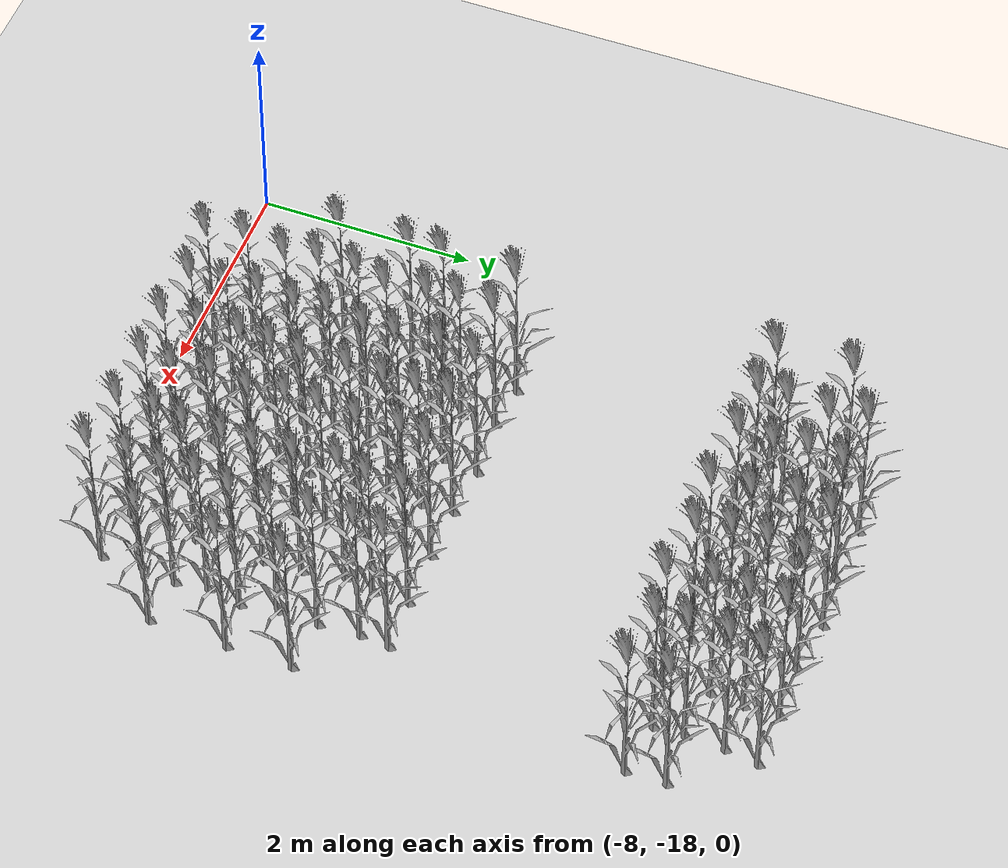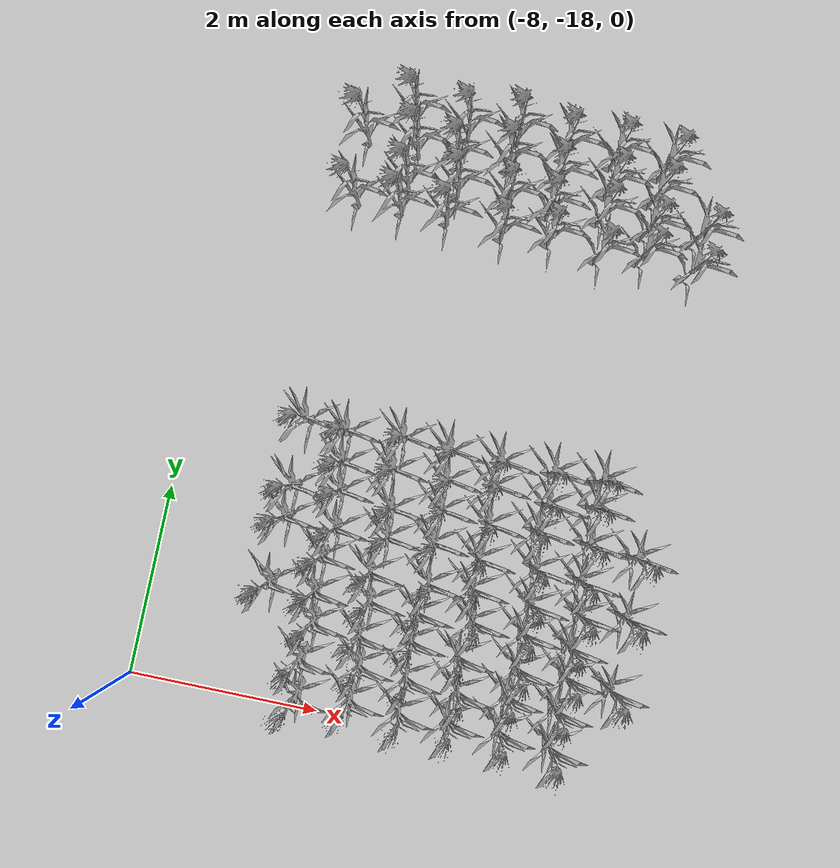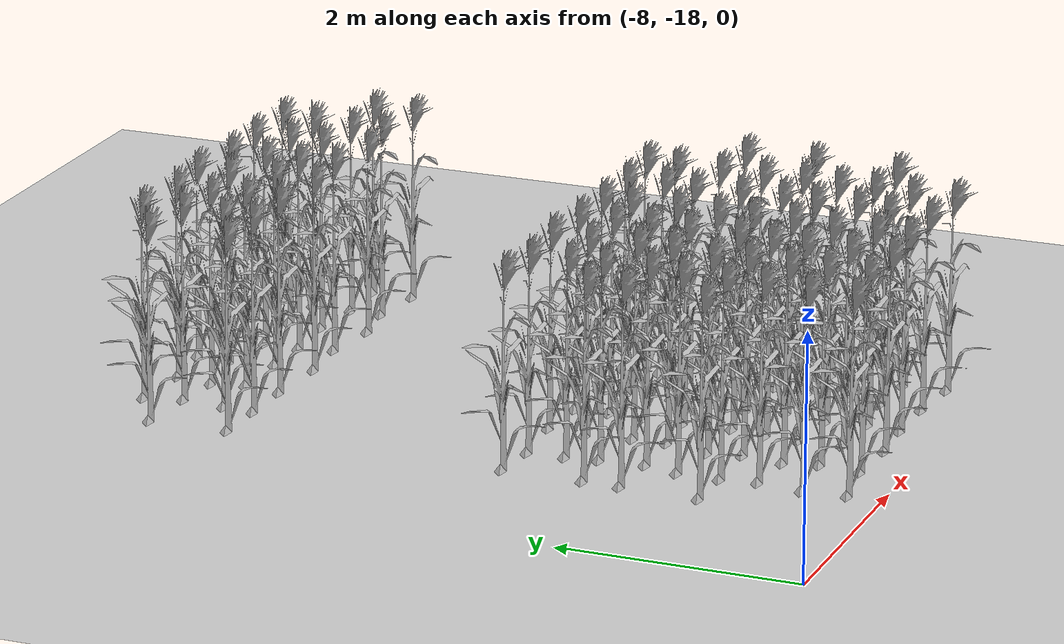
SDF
<sdf version="1.7">
 <world name="farmland_world">
  <model name="ground_plane">
   <static>1</static>
   <link name="link">
    <collision name="collision">
     <geometry><plane><normal>0 0 1</normal><size>40.0 40.0</size></plane></geometry>
     <surface><friction><ode><mu>100</mu><mu2>50</mu2></ode></friction></surface>
    </collision>
    <visual name="visual">
     <cast_shadows>0</cast_shadows>
     <geometry><plane><normal>0 0 1</normal><size>40.0 40.0</size></plane></geometry>
     <material>
      <script><uri>file://media/materials/scripts/gazebo.material</uri><name>Gazebo/Grey</name></script>
     </material>
    </visual>
   </link>
  </model>
  <model name="tree_3_1611">
   <static>1</static>
   <link name="link">
    <collision name="collision">
     <geometry><mesh><uri>model://Corn_low_poly/corn.obj</uri><scale>1 1 1</scale></mesh></geometry>
     <surface><friction><ode><mu>100</mu><mu2>50</mu2></ode></friction></surface>
    </collision>
    <visual name="visual">
     <geometry><mesh><uri>model://Corn_low_poly/corn.obj</uri><scale>1 1 1</scale></mesh></geometry>
    </visual>
   </link>
   <pose>-3.1397422386692835 -17.030736346468213 0 0 0 0</pose>
  </model>
  <model name="tree_3_1612">
   <static>1</static>
   <link name="link">
    <collision name="collision">
     <geometry><mesh><uri>model://Corn_low_poly/corn.obj</uri><scale>1 1 1</scale></mesh></geometry>
     <surface><friction><ode><mu>100</mu><mu2>50</mu2></ode></friction></surface>
    </collision>
    <visual name="visual">
     <geometry><mesh><uri>model://Corn_low_poly/corn.obj</uri><scale>1 1 1</scale></mesh></geometry>
    </visual>
   </link>
   <pose>-3.59288550042372 -16.99288399985926 0 0 0 0</pose>
  </model>
  <model name="tree_3_1613">
   <static>1</static>
   <link name="link">
    <collision name="collision">
     <geometry><mesh><uri>model://Corn_low_poly/corn.obj</uri><scale>1 1 1</scale></mesh></geometry>
     <surface><friction><ode><mu>100</mu><mu2>50</mu2></ode></friction></surface>
    </collision>
    <visual name="visual">
     <geometry><mesh><uri>model://Corn_low_poly/corn.obj</uri><scale>1 1 1</scale></mesh></geometry>
    </visual>
   </link>
   <pose>-4.085059337153093 -17.00917481386576 0 0 0 0</pose>
  </model>
  <model name="tree_3_1614">
   <static>1</static>
   <link name="link">
    <collision name="collision">
     <geometry><mesh><uri>model://Corn_low_poly/corn.obj</uri><scale>1 1 1</scale></mesh></geometry>
     <surface><friction><ode><mu>100</mu><mu2>50</mu2></ode></friction></surface>
    </collision>
    <visual name="visual">
     <geometry><mesh><uri>model://Corn_low_poly/corn.obj</uri><scale>1 1 1</scale></mesh></geometry>
    </visual>
   </link>
   <pose>-4.685846703686727 -17.00980598752761 0 0 0 0</pose>
  </model>
  <model name="tree_3_1615">
   <static>1</static>
   <link name="link">
    <collision name="collision">
     <geometry><mesh><uri>model://Corn_low_poly/corn.obj</uri><scale>1 1 1</scale></mesh></geometry>
     <surface><friction><ode><mu>100</mu><mu2>50</mu2></ode></friction></surface>
    </collision>
    <visual name="visual">
     <geometry><mesh><uri>model://Corn_low_poly/corn.obj</uri><scale>1 1 1</scale></mesh></geometry>
    </visual>
   </link>
   <pose>-5.172868781764245 -16.9514650148674 0 0 0 0</pose>
  </model>
  <model name="tree_3_1616">
   <static>1</static>
   <link name="link">
    <collision name="collision">
     <geometry><mesh><uri>model://Corn_low_poly/corn.obj</uri><scale>1 1 1</scale></mesh></geometry>
     <surface><friction><ode><mu>100</mu><mu2>50</mu2></ode></friction></surface>
    </collision>
    <visual name="visual">
     <geometry><mesh><uri>model://Corn_low_poly/corn.obj</uri><scale>1 1 1</scale></mesh></geometry>
    </visual>
   </link>
   <pose>-5.695799287543952 -17.002652059336327 0 0 0 0</pose>
  </model>
  <model name="tree_3_1617">
   <static>1</static>
   <link name="link">
    <collision name="collision">
     <geometry><mesh><uri>model://Corn_low_poly/corn.obj</uri><scale>1 1 1</scale></mesh></geometry>
     <surface><friction><ode><mu>100</mu><mu2>50</mu2></ode></friction></surface>
    </collision>
    <visual name="visual">
     <geometry><mesh><uri>model://Corn_low_poly/corn.obj</uri><scale>1 1 1</scale></mesh></geometry>
    </visual>
   </link>
   <pose>-6.1676841356636505 -16.96818800156991 0 0 0 0</pose>
  </model>
  <model name="tree_3_1646">
   <static>1</static>
   <link name="link">
    <collision name="collision">
     <geometry><mesh><uri>model://Corn_low_poly/corn.obj</uri><scale>1 1 1</scale></mesh></geometry>
     <surface><friction><ode><mu>100</mu><mu2>50</mu2></ode></friction></surface>
    </collision>
    <visual name="visual">
     <geometry><mesh><uri>model://Corn_low_poly/corn.obj</uri><scale>1 1 1</scale></mesh></geometry>
    </visual>
   </link>
   <pose>-3.641743785510311 -17.323104827554495 0 0 0 0</pose>
  </model>
  <model name="tree_3_1647">
   <static>1</static>
   <link name="link">
    <collision name="collision">
     <geometry><mesh><uri>model://Corn_low_poly/corn.obj</uri><scale>1 1 1</scale></mesh></geometry>
     <surface><friction><ode><mu>100</mu><mu2>50</mu2></ode></friction></surface>
    </collision>
    <visual name="visual">
     <geometry><mesh><uri>model://Corn_low_poly/corn.obj</uri><scale>1 1 1</scale></mesh></geometry>
    </visual>
   </link>
   <pose>-4.137597327462833 -17.28719341136074 0 0 0 0</pose>
  </model>
  <model name="tree_3_1648">
   <static>1</static>
   <link name="link">
    <collision name="collision">
     <geometry><mesh><uri>model://Corn_low_poly/corn.obj</uri><scale>1 1 1</scale></mesh></geometry>
     <surface><friction><ode><mu>100</mu><mu2>50</mu2></ode></friction></surface>
    </collision>
    <visual name="visual">
     <geometry><mesh><uri>model://Corn_low_poly/corn.obj</uri><scale>1 1 1</scale></mesh></geometry>
    </visual>
   </link>
   <pose>-4.619360274058074 -17.34922768461652 0 0 0 0</pose>
  </model>
  <model name="tree_3_1649">
   <static>1</static>
   <link name="link">
    <collision name="collision">
     <geometry><mesh><uri>model://Corn_low_poly/corn.obj</uri><scale>1 1 1</scale></mesh></geometry>
     <surface><friction><ode><mu>100</mu><mu2>50</mu2></ode></friction></surface>
    </collision>
    <visual name="visual">
     <geometry><mesh><uri>model://Corn_low_poly/corn.obj</uri><scale>1 1 1</scale></mesh></geometry>
    </visual>
   </link>
   <pose>-5.146396507543547 -17.3141138511327 0 0 0 0</pose>
  </model>
  <model name="tree_3_1650">
   <static>1</static>
   <link name="link">
    <collision name="collision">
     <geometry><mesh><uri>model://Corn_low_poly/corn.obj</uri><scale>1 1 1</scale></mesh></geometry>
     <surface><friction><ode><mu>100</mu><mu2>50</mu2></ode></friction></surface>
    </collision>
    <visual name="visual">
     <geometry><mesh><uri>model://Corn_low_poly/corn.obj</uri><scale>1 1 1</scale></mesh></geometry>
    </visual>
   </link>
   <pose>-5.626792496311977 -17.28869135371744 0 0 0 0</pose>
  </model>
  <model name="tree_3_1651">
   <static>1</static>
   <link name="link">
    <collision name="collision">
     <geometry><mesh><uri>model://Corn_low_poly/corn.obj</uri><scale>1 1 1</scale></mesh></geometry>
     <surface><friction><ode><mu>100</mu><mu2>50</mu2></ode></friction></surface>
    </collision>
    <visual name="visual">
     <geometry><mesh><uri>model://Corn_low_poly/corn.obj</uri><scale>1 1 1</scale></mesh></geometry>
    </visual>
   </link>
   <pose>-6.2167147938502625 -17.346010143679404 0 0 0 0</pose>
  </model>
  <model name="tree_3_1680">
   <static>1</static>
   <link name="link">
    <collision name="collision">
     <geometry><mesh><uri>model://Corn_low_poly/corn.obj</uri><scale>1 1 1</scale></mesh></geometry>
     <surface><friction><ode><mu>100</mu><mu2>50</mu2></ode></friction></surface>
    </collision>
    <visual name="visual">
     <geometry><mesh><uri>model://Corn_low_poly/corn.obj</uri><scale>1 1 1</scale></mesh></geometry>
    </visual>
   </link>
   <pose>-3.626656687373963 -17.690570200165535 0 0 0 0</pose>
  </model>
  <model name="tree_3_1681">
   <static>1</static>
   <link name="link">
    <collision name="collision">
     <geometry><mesh><uri>model://Corn_low_poly/corn.obj</uri><scale>1 1 1</scale></mesh></geometry>
     <surface><friction><ode><mu>100</mu><mu2>50</mu2></ode></friction></surface>
    </collision>
    <visual name="visual">
     <geometry><mesh><uri>model://Corn_low_poly/corn.obj</uri><scale>1 1 1</scale></mesh></geometry>
    </visual>
   </link>
   <pose>-4.142074260902395 -17.64216543627255 0 0 0 0</pose>
  </model>
  <model name="tree_3_1682">
   <static>1</static>
   <link name="link">
    <collision name="collision">
     <geometry><mesh><uri>model://Corn_low_poly/corn.obj</uri><scale>1 1 1</scale></mesh></geometry>
     <surface><friction><ode><mu>100</mu><mu2>50</mu2></ode></friction></surface>
    </collision>
    <visual name="visual">
     <geometry><mesh><uri>model://Corn_low_poly/corn.obj</uri><scale>1 1 1</scale></mesh></geometry>
    </visual>
   </link>
   <pose>-4.663910391695549 -17.634626997973267 0 0 0 0</pose>
  </model>
  <model name="tree_3_1683">
   <static>1</static>
   <link name="link">
    <collision name="collision">
     <geometry><mesh><uri>model://Corn_low_poly/corn.obj</uri><scale>1 1 1</scale></mesh></geometry>
     <surface><friction><ode><mu>100</mu><mu2>50</mu2></ode></friction></surface>
    </collision>
    <visual name="visual">
     <geometry><mesh><uri>model://Corn_low_poly/corn.obj</uri><scale>1 1 1</scale></mesh></geometry>
    </visual>
   </link>
   <pose>-5.146468566434922 -17.66493615223925 0 0 0 0</pose>
  </model>
  <model name="tree_3_1684">
   <static>1</static>
   <link name="link">
    <collision name="collision">
     <geometry><mesh><uri>model://Corn_low_poly/corn.obj</uri><scale>1 1 1</scale></mesh></geometry>
     <surface><friction><ode><mu>100</mu><mu2>50</mu2></ode></friction></surface>
    </collision>
    <visual name="visual">
     <geometry><mesh><uri>model://Corn_low_poly/corn.obj</uri><scale>1 1 1</scale></mesh></geometry>
    </visual>
   </link>
   <pose>-5.656145755442578 -17.634601215581778 0 0 0 0</pose>
  </model>
  <model name="tree_3_1685">
   <static>1</static>
   <link name="link">
    <collision name="collision">
     <geometry><mesh><uri>model://Corn_low_poly/corn.obj</uri><scale>1 1 1</scale></mesh></geometry>
     <surface><friction><ode><mu>100</mu><mu2>50</mu2></ode></friction></surface>
    </collision>
    <visual name="visual">
     <geometry><mesh><uri>model://Corn_low_poly/corn.obj</uri><scale>1 1 1</scale></mesh></geometry>
    </visual>
   </link>
   <pose>-6.181389979331996 -17.711629415954064 0 0 0 0</pose>
  </model>
  <model name="tree_3_1714">
   <static>1</static>
   <link name="link">
    <collision name="collision">
     <geometry><mesh><uri>model://Corn_low_poly/corn.obj</uri><scale>1 1 1</scale></mesh></geometry>
     <surface><friction><ode><mu>100</mu><mu2>50</mu2></ode></friction></surface>
    </collision>
    <visual name="visual">
     <geometry><mesh><uri>model://Corn_low_poly/corn.obj</uri><scale>1 1 1</scale></mesh></geometry>
    </visual>
   </link>
   <pose>-3.6272933151675146 -16.043872462049123 0 0 0 0</pose>
  </model>
  <model name="tree_3_1715">
   <static>1</static>
   <link name="link">
    <collision name="collision">
     <geometry><mesh><uri>model://Corn_low_poly/corn.obj</uri><scale>1 1 1</scale></mesh></geometry>
     <surface><friction><ode><mu>100</mu><mu2>50</mu2></ode></friction></surface>
    </collision>
    <visual name="visual">
     <geometry><mesh><uri>model://Corn_low_poly/corn.obj</uri><scale>1 1 1</scale></mesh></geometry>
    </visual>
   </link>
   <pose>-4.095188326739202 -16.015487851467963 0 0 0 0</pose>
  </model>
  <model name="tree_3_1716">
   <static>1</static>
   <link name="link">
    <collision name="collision">
     <geometry><mesh><uri>model://Corn_low_poly/corn.obj</uri><scale>1 1 1</scale></mesh></geometry>
     <surface><friction><ode><mu>100</mu><mu2>50</mu2></ode></friction></surface>
    </collision>
    <visual name="visual">
     <geometry><mesh><uri>model://Corn_low_poly/corn.obj</uri><scale>1 1 1</scale></mesh></geometry>
    </visual>
   </link>
   <pose>-4.673987175027885 -16.029645776999036 0 0 0 0</pose>
  </model>
  <model name="tree_3_1717">
   <static>1</static>
   <link name="link">
    <collision name="collision">
     <geometry><mesh><uri>model://Corn_low_poly/corn.obj</uri><scale>1 1 1</scale></mesh></geometry>
     <surface><friction><ode><mu>100</mu><mu2>50</mu2></ode></friction></surface>
    </collision>
    <visual name="visual">
     <geometry><mesh><uri>model://Corn_low_poly/corn.obj</uri><scale>1 1 1</scale></mesh></geometry>
    </visual>
   </link>
   <pose>-5.152997664500418 -15.960549197843598 0 0 0 0</pose>
  </model>
  <model name="tree_3_1718">
   <static>1</static>
   <link name="link">
    <collision name="collision">
     <geometry><mesh><uri>model://Corn_low_poly/corn.obj</uri><scale>1 1 1</scale></mesh></geometry>
     <surface><friction><ode><mu>100</mu><mu2>50</mu2></ode></friction></surface>
    </collision>
    <visual name="visual">
     <geometry><mesh><uri>model://Corn_low_poly/corn.obj</uri><scale>1 1 1</scale></mesh></geometry>
    </visual>
   </link>
   <pose>-5.619545102801128 -16.000574977163758 0 0 0 0</pose>
  </model>
  <model name="tree_3_1719">
   <static>1</static>
   <link name="link">
    <collision name="collision">
     <geometry><mesh><uri>model://Corn_low_poly/corn.obj</uri><scale>1 1 1</scale></mesh></geometry>
     <surface><friction><ode><mu>100</mu><mu2>50</mu2></ode></friction></surface>
    </collision>
    <visual name="visual">
     <geometry><mesh><uri>model://Corn_low_poly/corn.obj</uri><scale>1 1 1</scale></mesh></geometry>
    </visual>
   </link>
   <pose>-6.138362162706873 -16.014624042219957 0 0 0 0</pose>
  </model>
  <model name="tree_3_1720">
   <static>1</static>
   <link name="link">
    <collision name="collision">
     <geometry><mesh><uri>model://Corn_low_poly/corn.obj</uri><scale>1 1 1</scale></mesh></geometry>
     <surface><friction><ode><mu>100</mu><mu2>50</mu2></ode></friction></surface>
    </collision>
    <visual name="visual">
     <geometry><mesh><uri>model://Corn_low_poly/corn.obj</uri><scale>1 1 1</scale></mesh></geometry>
    </visual>
   </link>
   <pose>-6.655628417653279 -15.999897211862011 0 0 0 0</pose>
  </model>
  <model name="tree_3_1747">
   <static>1</static>
   <link name="link">
    <collision name="collision">
     <geometry><mesh><uri>model://Corn_low_poly/corn.obj</uri><scale>1 1 1</scale></mesh></geometry>
     <surface><friction><ode><mu>100</mu><mu2>50</mu2></ode></friction></surface>
    </collision>
    <visual name="visual">
     <geometry><mesh><uri>model://Corn_low_poly/corn.obj</uri><scale>1 1 1</scale></mesh></geometry>
    </visual>
   </link>
   <pose>-3.1203129160128147 -16.308423415425683 0 0 0 0</pose>
  </model>
  <model name="tree_3_1748">
   <static>1</static>
   <link name="link">
    <collision name="collision">
     <geometry><mesh><uri>model://Corn_low_poly/corn.obj</uri><scale>1 1 1</scale></mesh></geometry>
     <surface><friction><ode><mu>100</mu><mu2>50</mu2></ode></friction></surface>
    </collision>
    <visual name="visual">
     <geometry><mesh><uri>model://Corn_low_poly/corn.obj</uri><scale>1 1 1</scale></mesh></geometry>
    </visual>
   </link>
   <pose>-3.5713962718185894 -16.374798930211952 0 0 0 0</pose>
  </model>
  <model name="tree_3_1749">
   <static>1</static>
   <link name="link">
    <collision name="collision">
     <geometry><mesh><uri>model://Corn_low_poly/corn.obj</uri><scale>1 1 1</scale></mesh></geometry>
     <surface><friction><ode><mu>100</mu><mu2>50</mu2></ode></friction></surface>
    </collision>
    <visual name="visual">
     <geometry><mesh><uri>model://Corn_low_poly/corn.obj</uri><scale>1 1 1</scale></mesh></geometry>
    </visual>
   </link>
   <pose>-4.074432072884407 -16.368140793353923 0 0 0 0</pose>
  </model>
  <model name="tree_3_1750">
   <static>1</static>
   <link name="link">
    <collision name="collision">
     <geometry><mesh><uri>model://Corn_low_poly/corn.obj</uri><scale>1 1 1</scale></mesh></geometry>
     <surface><friction><ode><mu>100</mu><mu2>50</mu2></ode></friction></surface>
    </collision>
    <visual name="visual">
     <geometry><mesh><uri>model://Corn_low_poly/corn.obj</uri><scale>1 1 1</scale></mesh></geometry>
    </visual>
   </link>
   <pose>-4.677072923241501 -16.327762180886484 0 0 0 0</pose>
  </model>
  <model name="tree_3_1751">
   <static>1</static>
   <link name="link">
    <collision name="collision">
     <geometry><mesh><uri>model://Corn_low_poly/corn.obj</uri><scale>1 1 1</scale></mesh></geometry>
     <surface><friction><ode><mu>100</mu><mu2>50</mu2></ode></friction></surface>
    </collision>
    <visual name="visual">
     <geometry><mesh><uri>model://Corn_low_poly/corn.obj</uri><scale>1 1 1</scale></mesh></geometry>
    </visual>
   </link>
   <pose>-5.118922395369588 -16.371063998339526 0 0 0 0</pose>
  </model>
  <model name="tree_3_1752">
   <static>1</static>
   <link name="link">
    <collision name="collision">
     <geometry><mesh><uri>model://Corn_low_poly/corn.obj</uri><scale>1 1 1</scale></mesh></geometry>
     <surface><friction><ode><mu>100</mu><mu2>50</mu2></ode></friction></surface>
    </collision>
    <visual name="visual">
     <geometry><mesh><uri>model://Corn_low_poly/corn.obj</uri><scale>1 1 1</scale></mesh></geometry>
    </visual>
   </link>
   <pose>-5.711892411233068 -16.373869350701682 0 0 0 0</pose>
  </model>
  <model name="tree_3_1753">
   <static>1</static>
   <link name="link">
    <collision name="collision">
     <geometry><mesh><uri>model://Corn_low_poly/corn.obj</uri><scale>1 1 1</scale></mesh></geometry>
     <surface><friction><ode><mu>100</mu><mu2>50</mu2></ode></friction></surface>
    </collision>
    <visual name="visual">
     <geometry><mesh><uri>model://Corn_low_poly/corn.obj</uri><scale>1 1 1</scale></mesh></geometry>
    </visual>
   </link>
   <pose>-6.212683852213205 -16.30864493719404 0 0 0 0</pose>
  </model>
  <model name="tree_3_1782">
   <static>1</static>
   <link name="link">
    <collision name="collision">
     <geometry><mesh><uri>model://Corn_low_poly/corn.obj</uri><scale>1 1 1</scale></mesh></geometry>
     <surface><friction><ode><mu>100</mu><mu2>50</mu2></ode></friction></surface>
    </collision>
    <visual name="visual">
     <geometry><mesh><uri>model://Corn_low_poly/corn.obj</uri><scale>1 1 1</scale></mesh></geometry>
    </visual>
   </link>
   <pose>-3.6285955800052467 -16.694652311402134 0 0 0 0</pose>
  </model>
  <model name="tree_3_1783">
   <static>1</static>
   <link name="link">
    <collision name="collision">
     <geometry><mesh><uri>model://Corn_low_poly/corn.obj</uri><scale>1 1 1</scale></mesh></geometry>
     <surface><friction><ode><mu>100</mu><mu2>50</mu2></ode></friction></surface>
    </collision>
    <visual name="visual">
     <geometry><mesh><uri>model://Corn_low_poly/corn.obj</uri><scale>1 1 1</scale></mesh></geometry>
    </visual>
   </link>
   <pose>-4.093695785388335 -16.655809845333117 0 0 0 0</pose>
  </model>
  <model name="tree_3_1784">
   <static>1</static>
   <link name="link">
    <collision name="collision">
     <geometry><mesh><uri>model://Corn_low_poly/corn.obj</uri><scale>1 1 1</scale></mesh></geometry>
     <surface><friction><ode><mu>100</mu><mu2>50</mu2></ode></friction></surface>
    </collision>
    <visual name="visual">
     <geometry><mesh><uri>model://Corn_low_poly/corn.obj</uri><scale>1 1 1</scale></mesh></geometry>
    </visual>
   </link>
   <pose>-4.6113411313050445 -16.648671154962706 0 0 0 0</pose>
  </model>
  <model name="tree_3_1785">
   <static>1</static>
   <link name="link">
    <collision name="collision">
     <geometry><mesh><uri>model://Corn_low_poly/corn.obj</uri><scale>1 1 1</scale></mesh></geometry>
     <surface><friction><ode><mu>100</mu><mu2>50</mu2></ode></friction></surface>
    </collision>
    <visual name="visual">
     <geometry><mesh><uri>model://Corn_low_poly/corn.obj</uri><scale>1 1 1</scale></mesh></geometry>
    </visual>
   </link>
   <pose>-5.164128123638202 -16.669041853189956 0 0 0 0</pose>
  </model>
  <model name="tree_3_1786">
   <static>1</static>
   <link name="link">
    <collision name="collision">
     <geometry><mesh><uri>model://Corn_low_poly/corn.obj</uri><scale>1 1 1</scale></mesh></geometry>
     <surface><friction><ode><mu>100</mu><mu2>50</mu2></ode></friction></surface>
    </collision>
    <visual name="visual">
     <geometry><mesh><uri>model://Corn_low_poly/corn.obj</uri><scale>1 1 1</scale></mesh></geometry>
    </visual>
   </link>
   <pose>-5.650744012435363 -16.652536508827833 0 0 0 0</pose>
  </model>
  <model name="tree_3_1787">
   <static>1</static>
   <link name="link">
    <collision name="collision">
     <geometry><mesh><uri>model://Corn_low_poly/corn.obj</uri><scale>1 1 1</scale></mesh></geometry>
     <surface><friction><ode><mu>100</mu><mu2>50</mu2></ode></friction></surface>
    </collision>
    <visual name="visual">
     <geometry><mesh><uri>model://Corn_low_poly/corn.obj</uri><scale>1 1 1</scale></mesh></geometry>
    </visual>
   </link>
   <pose>-6.214442000567977 -16.66604081338597 0 0 0 0</pose>
  </model>
  <model name="tree_3_1788">
   <static>1</static>
   <link name="link">
    <collision name="collision">
     <geometry><mesh><uri>model://Corn_low_poly/corn.obj</uri><scale>1 1 1</scale></mesh></geometry>
     <surface><friction><ode><mu>100</mu><mu2>50</mu2></ode></friction></surface>
    </collision>
    <visual name="visual">
     <geometry><mesh><uri>model://Corn_low_poly/corn.obj</uri><scale>1 1 1</scale></mesh></geometry>
    </visual>
   </link>
   <pose>-6.670846621222684 -16.660760306926033 0 0 0 0</pose>
  </model>
  <model name="tree_3_1816">
   <static>1</static>
   <link name="link">
    <collision name="collision">
     <geometry><mesh><uri>model://Corn_low_poly/corn.obj</uri><scale>1 1 1</scale></mesh></geometry>
     <surface><friction><ode><mu>100</mu><mu2>50</mu2></ode></friction></surface>
    </collision>
    <visual name="visual">
     <geometry><mesh><uri>model://Corn_low_poly/corn.obj</uri><scale>1 1 1</scale></mesh></geometry>
    </visual>
   </link>
   <pose>-3.6087052337561496 -15.018952401241194 0 0 0 0</pose>
  </model>
  <model name="tree_3_1817">
   <static>1</static>
   <link name="link">
    <collision name="collision">
     <geometry><mesh><uri>model://Corn_low_poly/corn.obj</uri><scale>1 1 1</scale></mesh></geometry>
     <surface><friction><ode><mu>100</mu><mu2>50</mu2></ode></friction></surface>
    </collision>
    <visual name="visual">
     <geometry><mesh><uri>model://Corn_low_poly/corn.obj</uri><scale>1 1 1</scale></mesh></geometry>
    </visual>
   </link>
   <pose>-4.1070528802377275 -15.037573755842324 0 0 0 0</pose>
  </model>
  <model name="tree_3_1818">
   <static>1</static>
   <link name="link">
    <collision name="collision">
     <geometry><mesh><uri>model://Corn_low_poly/corn.obj</uri><scale>1 1 1</scale></mesh></geometry>
     <surface><friction><ode><mu>100</mu><mu2>50</mu2></ode></friction></surface>
    </collision>
    <visual name="visual">
     <geometry><mesh><uri>model://Corn_low_poly/corn.obj</uri><scale>1 1 1</scale></mesh></geometry>
    </visual>
   </link>
   <pose>-4.652064844733302 -15.042725363409541 0 0 0 0</pose>
  </model>
  <model name="tree_3_1819">
   <static>1</static>
   <link name="link">
    <collision name="collision">
     <geometry><mesh><uri>model://Corn_low_poly/corn.obj</uri><scale>1 1 1</scale></mesh></geometry>
     <surface><friction><ode><mu>100</mu><mu2>50</mu2></ode></friction></surface>
    </collision>
    <visual name="visual">
     <geometry><mesh><uri>model://Corn_low_poly/corn.obj</uri><scale>1 1 1</scale></mesh></geometry>
    </visual>
   </link>
   <pose>-5.169477396566632 -15.036894237131703 0 0 0 0</pose>
  </model>
  <model name="tree_3_1820">
   <static>1</static>
   <link name="link">
    <collision name="collision">
     <geometry><mesh><uri>model://Corn_low_poly/corn.obj</uri><scale>1 1 1</scale></mesh></geometry>
     <surface><friction><ode><mu>100</mu><mu2>50</mu2></ode></friction></surface>
    </collision>
    <visual name="visual">
     <geometry><mesh><uri>model://Corn_low_poly/corn.obj</uri><scale>1 1 1</scale></mesh></geometry>
    </visual>
   </link>
   <pose>-5.656482641810184 -15.000963063416302 0 0 0 0</pose>
  </model>
  <model name="tree_3_1821">
   <static>1</static>
   <link name="link">
    <collision name="collision">
     <geometry><mesh><uri>model://Corn_low_poly/corn.obj</uri><scale>1 1 1</scale></mesh></geometry>
     <surface><friction><ode><mu>100</mu><mu2>50</mu2></ode></friction></surface>
    </collision>
    <visual name="visual">
     <geometry><mesh><uri>model://Corn_low_poly/corn.obj</uri><scale>1 1 1</scale></mesh></geometry>
    </visual>
   </link>
   <pose>-6.2277019827246765 -15.04900702120922 0 0 0 0</pose>
  </model>
  <model name="tree_3_1822">
   <static>1</static>
   <link name="link">
    <collision name="collision">
     <geometry><mesh><uri>model://Corn_low_poly/corn.obj</uri><scale>1 1 1</scale></mesh></geometry>
     <surface><friction><ode><mu>100</mu><mu2>50</mu2></ode></friction></surface>
    </collision>
    <visual name="visual">
     <geometry><mesh><uri>model://Corn_low_poly/corn.obj</uri><scale>1 1 1</scale></mesh></geometry>
    </visual>
   </link>
   <pose>-6.656590079451965 -15.008446522166166 0 0 0 0</pose>
  </model>
  <model name="tree_3_1850">
   <static>1</static>
   <link name="link">
    <collision name="collision">
     <geometry><mesh><uri>model://Corn_low_poly/corn.obj</uri><scale>1 1 1</scale></mesh></geometry>
     <surface><friction><ode><mu>100</mu><mu2>50</mu2></ode></friction></surface>
    </collision>
    <visual name="visual">
     <geometry><mesh><uri>model://Corn_low_poly/corn.obj</uri><scale>1 1 1</scale></mesh></geometry>
    </visual>
   </link>
   <pose>-3.637031244460719 -15.292049521724367 0 0 0 0</pose>
  </model>
  <model name="tree_3_1851">
   <static>1</static>
   <link name="link">
    <collision name="collision">
     <geometry><mesh><uri>model://Corn_low_poly/corn.obj</uri><scale>1 1 1</scale></mesh></geometry>
     <surface><friction><ode><mu>100</mu><mu2>50</mu2></ode></friction></surface>
    </collision>
    <visual name="visual">
     <geometry><mesh><uri>model://Corn_low_poly/corn.obj</uri><scale>1 1 1</scale></mesh></geometry>
    </visual>
   </link>
   <pose>-4.099145460281433 -15.360584260227466 0 0 0 0</pose>
  </model>
  <model name="tree_3_1852">
   <static>1</static>
   <link name="link">
    <collision name="collision">
     <geometry><mesh><uri>model://Corn_low_poly/corn.obj</uri><scale>1 1 1</scale></mesh></geometry>
     <surface><friction><ode><mu>100</mu><mu2>50</mu2></ode></friction></surface>
    </collision>
    <visual name="visual">
     <geometry><mesh><uri>model://Corn_low_poly/corn.obj</uri><scale>1 1 1</scale></mesh></geometry>
    </visual>
   </link>
   <pose>-4.678417184318175 -15.290083468781518 0 0 0 0</pose>
  </model>
  <model name="tree_3_1853">
   <static>1</static>
   <link name="link">
    <collision name="collision">
     <geometry><mesh><uri>model://Corn_low_poly/corn.obj</uri><scale>1 1 1</scale></mesh></geometry>
     <surface><friction><ode><mu>100</mu><mu2>50</mu2></ode></friction></surface>
    </collision>
    <visual name="visual">
     <geometry><mesh><uri>model://Corn_low_poly/corn.obj</uri><scale>1 1 1</scale></mesh></geometry>
    </visual>
   </link>
   <pose>-5.147739302151314 -15.328612174984466 0 0 0 0</pose>
  </model>
  <model name="tree_3_1854">
   <static>1</static>
   <link name="link">
    <collision name="collision">
     <geometry><mesh><uri>model://Corn_low_poly/corn.obj</uri><scale>1 1 1</scale></mesh></geometry>
     <surface><friction><ode><mu>100</mu><mu2>50</mu2></ode></friction></surface>
    </collision>
    <visual name="visual">
     <geometry><mesh><uri>model://Corn_low_poly/corn.obj</uri><scale>1 1 1</scale></mesh></geometry>
    </visual>
   </link>
   <pose>-5.693778415225128 -15.333033796901807 0 0 0 0</pose>
  </model>
  <model name="tree_3_1855">
   <static>1</static>
   <link name="link">
    <collision name="collision">
     <geometry><mesh><uri>model://Corn_low_poly/corn.obj</uri><scale>1 1 1</scale></mesh></geometry>
     <surface><friction><ode><mu>100</mu><mu2>50</mu2></ode></friction></surface>
    </collision>
    <visual name="visual">
     <geometry><mesh><uri>model://Corn_low_poly/corn.obj</uri><scale>1 1 1</scale></mesh></geometry>
    </visual>
   </link>
   <pose>-6.210894848014414 -15.363761315973157 0 0 0 0</pose>
  </model>
  <model name="tree_3_1883">
   <static>1</static>
   <link name="link">
    <collision name="collision">
     <geometry><mesh><uri>model://Corn_low_poly/corn.obj</uri><scale>1 1 1</scale></mesh></geometry>
     <surface><friction><ode><mu>100</mu><mu2>50</mu2></ode></friction></surface>
    </collision>
    <visual name="visual">
     <geometry><mesh><uri>model://Corn_low_poly/corn.obj</uri><scale>1 1 1</scale></mesh></geometry>
    </visual>
   </link>
   <pose>-3.1164311988661764 -15.7063242092912 0 0 0 0</pose>
  </model>
  <model name="tree_3_1884">
   <static>1</static>
   <link name="link">
    <collision name="collision">
     <geometry><mesh><uri>model://Corn_low_poly/corn.obj</uri><scale>1 1 1</scale></mesh></geometry>
     <surface><friction><ode><mu>100</mu><mu2>50</mu2></ode></friction></surface>
    </collision>
    <visual name="visual">
     <geometry><mesh><uri>model://Corn_low_poly/corn.obj</uri><scale>1 1 1</scale></mesh></geometry>
    </visual>
   </link>
   <pose>-3.6142428867586642 -15.67010595509621 0 0 0 0</pose>
  </model>
  <model name="tree_3_1885">
   <static>1</static>
   <link name="link">
    <collision name="collision">
     <geometry><mesh><uri>model://Corn_low_poly/corn.obj</uri><scale>1 1 1</scale></mesh></geometry>
     <surface><friction><ode><mu>100</mu><mu2>50</mu2></ode></friction></surface>
    </collision>
    <visual name="visual">
     <geometry><mesh><uri>model://Corn_low_poly/corn.obj</uri><scale>1 1 1</scale></mesh></geometry>
    </visual>
   </link>
   <pose>-4.161719651812339 -15.641017574723724 0 0 0 0</pose>
  </model>
  <model name="tree_3_1886">
   <static>1</static>
   <link name="link">
    <collision name="collision">
     <geometry><mesh><uri>model://Corn_low_poly/corn.obj</uri><scale>1 1 1</scale></mesh></geometry>
     <surface><friction><ode><mu>100</mu><mu2>50</mu2></ode></friction></surface>
    </collision>
    <visual name="visual">
     <geometry><mesh><uri>model://Corn_low_poly/corn.obj</uri><scale>1 1 1</scale></mesh></geometry>
    </visual>
   </link>
   <pose>-4.645690342197953 -15.672808980800898 0 0 0 0</pose>
  </model>
  <model name="tree_3_1887">
   <static>1</static>
   <link name="link">
    <collision name="collision">
     <geometry><mesh><uri>model://Corn_low_poly/corn.obj</uri><scale>1 1 1</scale></mesh></geometry>
     <surface><friction><ode><mu>100</mu><mu2>50</mu2></ode></friction></surface>
    </collision>
    <visual name="visual">
     <geometry><mesh><uri>model://Corn_low_poly/corn.obj</uri><scale>1 1 1</scale></mesh></geometry>
    </visual>
   </link>
   <pose>-5.1403603814161425 -15.627023915255775 0 0 0 0</pose>
  </model>
  <model name="tree_3_1888">
   <static>1</static>
   <link name="link">
    <collision name="collision">
     <geometry><mesh><uri>model://Corn_low_poly/corn.obj</uri><scale>1 1 1</scale></mesh></geometry>
     <surface><friction><ode><mu>100</mu><mu2>50</mu2></ode></friction></surface>
    </collision>
    <visual name="visual">
     <geometry><mesh><uri>model://Corn_low_poly/corn.obj</uri><scale>1 1 1</scale></mesh></geometry>
    </visual>
   </link>
   <pose>-5.6289463439164145 -15.713587522113407 0 0 0 0</pose>
  </model>
  <model name="tree_3_1889">
   <static>1</static>
   <link name="link">
    <collision name="collision">
     <geometry><mesh><uri>model://Corn_low_poly/corn.obj</uri><scale>1 1 1</scale></mesh></geometry>
     <surface><friction><ode><mu>100</mu><mu2>50</mu2></ode></friction></surface>
    </collision>
    <visual name="visual">
     <geometry><mesh><uri>model://Corn_low_poly/corn.obj</uri><scale>1 1 1</scale></mesh></geometry>
    </visual>
   </link>
   <pose>-6.174150746282484 -15.639558735672251 0 0 0 0</pose>
  </model>
  <model name="tree_3_1890">
   <static>1</static>
   <link name="link">
    <collision name="collision">
     <geometry><mesh><uri>model://Corn_low_poly/corn.obj</uri><scale>1 1 1</scale></mesh></geometry>
     <surface><friction><ode><mu>100</mu><mu2>50</mu2></ode></friction></surface>
    </collision>
    <visual name="visual">
     <geometry><mesh><uri>model://Corn_low_poly/corn.obj</uri><scale>1 1 1</scale></mesh></geometry>
    </visual>
   </link>
   <pose>-6.6510035620500245 -15.68608179437432 0 0 0 0</pose>
  </model>
  <model name="tree_3_1918">
   <static>1</static>
   <link name="link">
    <collision name="collision">
     <geometry><mesh><uri>model://Corn_low_poly/corn.obj</uri><scale>1 1 1</scale></mesh></geometry>
     <surface><friction><ode><mu>100</mu><mu2>50</mu2></ode></friction></surface>
    </collision>
    <visual name="visual">
     <geometry><mesh><uri>model://Corn_low_poly/corn.obj</uri><scale>1 1 1</scale></mesh></geometry>
    </visual>
   </link>
   <pose>-3.6220179079487558 -12.012877699541018 0 0 0 0</pose>
  </model>
  <model name="tree_3_1919">
   <static>1</static>
   <link name="link">
    <collision name="collision">
     <geometry><mesh><uri>model://Corn_low_poly/corn.obj</uri><scale>1 1 1</scale></mesh></geometry>
     <surface><friction><ode><mu>100</mu><mu2>50</mu2></ode></friction></surface>
    </collision>
    <visual name="visual">
     <geometry><mesh><uri>model://Corn_low_poly/corn.obj</uri><scale>1 1 1</scale></mesh></geometry>
    </visual>
   </link>
   <pose>-4.09912926348179 -12.009592699764292 0 0 0 0</pose>
  </model>
  <model name="tree_3_1920">
   <static>1</static>
   <link name="link">
    <collision name="collision">
     <geometry><mesh><uri>model://Corn_low_poly/corn.obj</uri><scale>1 1 1</scale></mesh></geometry>
     <surface><friction><ode><mu>100</mu><mu2>50</mu2></ode></friction></surface>
    </collision>
    <visual name="visual">
     <geometry><mesh><uri>model://Corn_low_poly/corn.obj</uri><scale>1 1 1</scale></mesh></geometry>
    </visual>
   </link>
   <pose>-4.656579023272096 -12.037761275937193 0 0 0 0</pose>
  </model>
  <model name="tree_3_1921">
   <static>1</static>
   <link name="link">
    <collision name="collision">
     <geometry><mesh><uri>model://Corn_low_poly/corn.obj</uri><scale>1 1 1</scale></mesh></geometry>
     <surface><friction><ode><mu>100</mu><mu2>50</mu2></ode></friction></surface>
    </collision>
    <visual name="visual">
     <geometry><mesh><uri>model://Corn_low_poly/corn.obj</uri><scale>1 1 1</scale></mesh></geometry>
    </visual>
   </link>
   <pose>-5.185375775147511 -11.955683236367493 0 0 0 0</pose>
  </model>
  <model name="tree_3_1922">
   <static>1</static>
   <link name="link">
    <collision name="collision">
     <geometry><mesh><uri>model://Corn_low_poly/corn.obj</uri><scale>1 1 1</scale></mesh></geometry>
     <surface><friction><ode><mu>100</mu><mu2>50</mu2></ode></friction></surface>
    </collision>
    <visual name="visual">
     <geometry><mesh><uri>model://Corn_low_poly/corn.obj</uri><scale>1 1 1</scale></mesh></geometry>
    </visual>
   </link>
   <pose>-5.713971150908785 -12.04002509172524 0 0 0 0</pose>
  </model>
  <model name="tree_3_1923">
   <static>1</static>
   <link name="link">
    <collision name="collision">
     <geometry><mesh><uri>model://Corn_low_poly/corn.obj</uri><scale>1 1 1</scale></mesh></geometry>
     <surface><friction><ode><mu>100</mu><mu2>50</mu2></ode></friction></surface>
    </collision>
    <visual name="visual">
     <geometry><mesh><uri>model://Corn_low_poly/corn.obj</uri><scale>1 1 1</scale></mesh></geometry>
    </visual>
   </link>
   <pose>-6.1467012673530785 -11.998198800848206 0 0 0 0</pose>
  </model>
  <model name="tree_3_1924">
   <static>1</static>
   <link name="link">
    <collision name="collision">
     <geometry><mesh><uri>model://Corn_low_poly/corn.obj</uri><scale>1 1 1</scale></mesh></geometry>
     <surface><friction><ode><mu>100</mu><mu2>50</mu2></ode></friction></surface>
    </collision>
    <visual name="visual">
     <geometry><mesh><uri>model://Corn_low_poly/corn.obj</uri><scale>1 1 1</scale></mesh></geometry>
    </visual>
   </link>
   <pose>-6.688798447440646 -11.954885409411895 0 0 0 0</pose>
  </model>
  <model name="tree_3_1951">
   <static>1</static>
   <link name="link">
    <collision name="collision">
     <geometry><mesh><uri>model://Corn_low_poly/corn.obj</uri><scale>1 1 1</scale></mesh></geometry>
     <surface><friction><ode><mu>100</mu><mu2>50</mu2></ode></friction></surface>
    </collision>
    <visual name="visual">
     <geometry><mesh><uri>model://Corn_low_poly/corn.obj</uri><scale>1 1 1</scale></mesh></geometry>
    </visual>
   </link>
   <pose>-3.117968405881006 -12.349619629015853 0 0 0 0</pose>
  </model>
  <model name="tree_3_1952">
   <static>1</static>
   <link name="link">
    <collision name="collision">
     <geometry><mesh><uri>model://Corn_low_poly/corn.obj</uri><scale>1 1 1</scale></mesh></geometry>
     <surface><friction><ode><mu>100</mu><mu2>50</mu2></ode></friction></surface>
    </collision>
    <visual name="visual">
     <geometry><mesh><uri>model://Corn_low_poly/corn.obj</uri><scale>1 1 1</scale></mesh></geometry>
    </visual>
   </link>
   <pose>-3.6292468715099457 -12.367594716578228 0 0 0 0</pose>
  </model>
  <model name="tree_3_1953">
   <static>1</static>
   <link name="link">
    <collision name="collision">
     <geometry><mesh><uri>model://Corn_low_poly/corn.obj</uri><scale>1 1 1</scale></mesh></geometry>
     <surface><friction><ode><mu>100</mu><mu2>50</mu2></ode></friction></surface>
    </collision>
    <visual name="visual">
     <geometry><mesh><uri>model://Corn_low_poly/corn.obj</uri><scale>1 1 1</scale></mesh></geometry>
    </visual>
   </link>
   <pose>-4.124778044076734 -12.314387443246527 0 0 0 0</pose>
  </model>
  <model name="tree_3_1954">
   <static>1</static>
   <link name="link">
    <collision name="collision">
     <geometry><mesh><uri>model://Corn_low_poly/corn.obj</uri><scale>1 1 1</scale></mesh></geometry>
     <surface><friction><ode><mu>100</mu><mu2>50</mu2></ode></friction></surface>
    </collision>
    <visual name="visual">
     <geometry><mesh><uri>model://Corn_low_poly/corn.obj</uri><scale>1 1 1</scale></mesh></geometry>
    </visual>
   </link>
   <pose>-4.66887568235203 -12.3533400267276 0 0 0 0</pose>
  </model>
  <model name="tree_3_1955">
   <static>1</static>
   <link name="link">
    <collision name="collision">
     <geometry><mesh><uri>model://Corn_low_poly/corn.obj</uri><scale>1 1 1</scale></mesh></geometry>
     <surface><friction><ode><mu>100</mu><mu2>50</mu2></ode></friction></surface>
    </collision>
    <visual name="visual">
     <geometry><mesh><uri>model://Corn_low_poly/corn.obj</uri><scale>1 1 1</scale></mesh></geometry>
    </visual>
   </link>
   <pose>-5.104641104572975 -12.334935330937162 0 0 0 0</pose>
  </model>
  <model name="tree_3_1956">
   <static>1</static>
   <link name="link">
    <collision name="collision">
     <geometry><mesh><uri>model://Corn_low_poly/corn.obj</uri><scale>1 1 1</scale></mesh></geometry>
     <surface><friction><ode><mu>100</mu><mu2>50</mu2></ode></friction></surface>
    </collision>
    <visual name="visual">
     <geometry><mesh><uri>model://Corn_low_poly/corn.obj</uri><scale>1 1 1</scale></mesh></geometry>
    </visual>
   </link>
   <pose>-5.646686976590086 -12.32271694053508 0 0 0 0</pose>
  </model>
  <model name="tree_3_1957">
   <static>1</static>
   <link name="link">
    <collision name="collision">
     <geometry><mesh><uri>model://Corn_low_poly/corn.obj</uri><scale>1 1 1</scale></mesh></geometry>
     <surface><friction><ode><mu>100</mu><mu2>50</mu2></ode></friction></surface>
    </collision>
    <visual name="visual">
     <geometry><mesh><uri>model://Corn_low_poly/corn.obj</uri><scale>1 1 1</scale></mesh></geometry>
    </visual>
   </link>
   <pose>-6.1758142692042695 -12.373063511575396 0 0 0 0</pose>
  </model>
  <model name="tree_3_1985">
   <static>1</static>
   <link name="link">
    <collision name="collision">
     <geometry><mesh><uri>model://Corn_low_poly/corn.obj</uri><scale>1 1 1</scale></mesh></geometry>
     <surface><friction><ode><mu>100</mu><mu2>50</mu2></ode></friction></surface>
    </collision>
    <visual name="visual">
     <geometry><mesh><uri>model://Corn_low_poly/corn.obj</uri><scale>1 1 1</scale></mesh></geometry>
    </visual>
   </link>
   <pose>-3.1137375940106704 -12.715971961582797 0 0 0 0</pose>
  </model>
  <model name="tree_3_1986">
   <static>1</static>
   <link name="link">
    <collision name="collision">
     <geometry><mesh><uri>model://Corn_low_poly/corn.obj</uri><scale>1 1 1</scale></mesh></geometry>
     <surface><friction><ode><mu>100</mu><mu2>50</mu2></ode></friction></surface>
    </collision>
    <visual name="visual">
     <geometry><mesh><uri>model://Corn_low_poly/corn.obj</uri><scale>1 1 1</scale></mesh></geometry>
    </visual>
   </link>
   <pose>-3.6262266454298713 -12.648472583461496 0 0 0 0</pose>
  </model>
  <model name="tree_3_1987">
   <static>1</static>
   <link name="link">
    <collision name="collision">
     <geometry><mesh><uri>model://Corn_low_poly/corn.obj</uri><scale>1 1 1</scale></mesh></geometry>
     <surface><friction><ode><mu>100</mu><mu2>50</mu2></ode></friction></surface>
    </collision>
    <visual name="visual">
     <geometry><mesh><uri>model://Corn_low_poly/corn.obj</uri><scale>1 1 1</scale></mesh></geometry>
    </visual>
   </link>
   <pose>-4.072849360635561 -12.718335728683858 0 0 0 0</pose>
  </model>
  <model name="tree_3_1988">
   <static>1</static>
   <link name="link">
    <collision name="collision">
     <geometry><mesh><uri>model://Corn_low_poly/corn.obj</uri><scale>1 1 1</scale></mesh></geometry>
     <surface><friction><ode><mu>100</mu><mu2>50</mu2></ode></friction></surface>
    </collision>
    <visual name="visual">
     <geometry><mesh><uri>model://Corn_low_poly/corn.obj</uri><scale>1 1 1</scale></mesh></geometry>
    </visual>
   </link>
   <pose>-4.600059440887695 -12.643461342288656 0 0 0 0</pose>
  </model>
  <model name="tree_3_1989">
   <static>1</static>
   <link name="link">
    <collision name="collision">
     <geometry><mesh><uri>model://Corn_low_poly/corn.obj</uri><scale>1 1 1</scale></mesh></geometry>
     <surface><friction><ode><mu>100</mu><mu2>50</mu2></ode></friction></surface>
    </collision>
    <visual name="visual">
     <geometry><mesh><uri>model://Corn_low_poly/corn.obj</uri><scale>1 1 1</scale></mesh></geometry>
    </visual>
   </link>
   <pose>-5.101795155290899 -12.68847177560011 0 0 0 0</pose>
  </model>
  <model name="tree_3_1990">
   <static>1</static>
   <link name="link">
    <collision name="collision">
     <geometry><mesh><uri>model://Corn_low_poly/corn.obj</uri><scale>1 1 1</scale></mesh></geometry>
     <surface><friction><ode><mu>100</mu><mu2>50</mu2></ode></friction></surface>
    </collision>
    <visual name="visual">
     <geometry><mesh><uri>model://Corn_low_poly/corn.obj</uri><scale>1 1 1</scale></mesh></geometry>
    </visual>
   </link>
   <pose>-5.701399298080159 -12.648561219371825 0 0 0 0</pose>
  </model>
  <model name="tree_3_1991">
   <static>1</static>
   <link name="link">
    <collision name="collision">
     <geometry><mesh><uri>model://Corn_low_poly/corn.obj</uri><scale>1 1 1</scale></mesh></geometry>
     <surface><friction><ode><mu>100</mu><mu2>50</mu2></ode></friction></surface>
    </collision>
    <visual name="visual">
     <geometry><mesh><uri>model://Corn_low_poly/corn.obj</uri><scale>1 1 1</scale></mesh></geometry>
    </visual>
   </link>
   <pose>-6.195436861706811 -12.643023111525926 0 0 0 0</pose>
  </model>
  <model name="tree_3_1992">
   <static>1</static>
   <link name="link">
    <collision name="collision">
     <geometry><mesh><uri>model://Corn_low_poly/corn.obj</uri><scale>1 1 1</scale></mesh></geometry>
     <surface><friction><ode><mu>100</mu><mu2>50</mu2></ode></friction></surface>
    </collision>
    <visual name="visual">
     <geometry><mesh><uri>model://Corn_low_poly/corn.obj</uri><scale>1 1 1</scale></mesh></geometry>
    </visual>
   </link>
   <pose>-6.665589104253525 -12.634150822332318 0 0 0 0</pose>
  </model>
  <model name="tree_3_2088">
   <static>1</static>
   <link name="link">
    <collision name="collision">
     <geometry><mesh><uri>model://Corn_low_poly/corn.obj</uri><scale>1 1 1</scale></mesh></geometry>
     <surface><friction><ode><mu>100</mu><mu2>50</mu2></ode></friction></surface>
    </collision>
    <visual name="visual">
     <geometry><mesh><uri>model://Corn_low_poly/corn.obj</uri><scale>1 1 1</scale></mesh></geometry>
    </visual>
   </link>
   <pose>-3.5749822235278277 -11.70587786304744 0 0 0 0</pose>
  </model>
  <model name="tree_3_2089">
   <static>1</static>
   <link name="link">
    <collision name="collision">
     <geometry><mesh><uri>model://Corn_low_poly/corn.obj</uri><scale>1 1 1</scale></mesh></geometry>
     <surface><friction><ode><mu>100</mu><mu2>50</mu2></ode></friction></surface>
    </collision>
    <visual name="visual">
     <geometry><mesh><uri>model://Corn_low_poly/corn.obj</uri><scale>1 1 1</scale></mesh></geometry>
    </visual>
   </link>
   <pose>-4.106799124554894 -11.691663822893055 0 0 0 0</pose>
  </model>
  <model name="tree_3_2090">
   <static>1</static>
   <link name="link">
    <collision name="collision">
     <geometry><mesh><uri>model://Corn_low_poly/corn.obj</uri><scale>1 1 1</scale></mesh></geometry>
     <surface><friction><ode><mu>100</mu><mu2>50</mu2></ode></friction></surface>
    </collision>
    <visual name="visual">
     <geometry><mesh><uri>model://Corn_low_poly/corn.obj</uri><scale>1 1 1</scale></mesh></geometry>
    </visual>
   </link>
   <pose>-4.627938414254716 -11.71453374625829 0 0 0 0</pose>
  </model>
  <model name="tree_3_2091">
   <static>1</static>
   <link name="link">
    <collision name="collision">
     <geometry><mesh><uri>model://Corn_low_poly/corn.obj</uri><scale>1 1 1</scale></mesh></geometry>
     <surface><friction><ode><mu>100</mu><mu2>50</mu2></ode></friction></surface>
    </collision>
    <visual name="visual">
     <geometry><mesh><uri>model://Corn_low_poly/corn.obj</uri><scale>1 1 1</scale></mesh></geometry>
    </visual>
   </link>
   <pose>-5.139601951360852 -11.648497629235557 0 0 0 0</pose>
  </model>
  <model name="tree_3_2092">
   <static>1</static>
   <link name="link">
    <collision name="collision">
     <geometry><mesh><uri>model://Corn_low_poly/corn.obj</uri><scale>1 1 1</scale></mesh></geometry>
     <surface><friction><ode><mu>100</mu><mu2>50</mu2></ode></friction></surface>
    </collision>
    <visual name="visual">
     <geometry><mesh><uri>model://Corn_low_poly/corn.obj</uri><scale>1 1 1</scale></mesh></geometry>
    </visual>
   </link>
   <pose>-5.664156412590911 -11.715604937108965 0 0 0 0</pose>
  </model>
  <model name="tree_3_2093">
   <static>1</static>
   <link name="link">
    <collision name="collision">
     <geometry><mesh><uri>model://Corn_low_poly/corn.obj</uri><scale>1 1 1</scale></mesh></geometry>
     <surface><friction><ode><mu>100</mu><mu2>50</mu2></ode></friction></surface>
    </collision>
    <visual name="visual">
     <geometry><mesh><uri>model://Corn_low_poly/corn.obj</uri><scale>1 1 1</scale></mesh></geometry>
    </visual>
   </link>
   <pose>-6.225639705853947 -11.677039506156548 0 0 0 0</pose>
  </model>
 </world>
</sdf>
